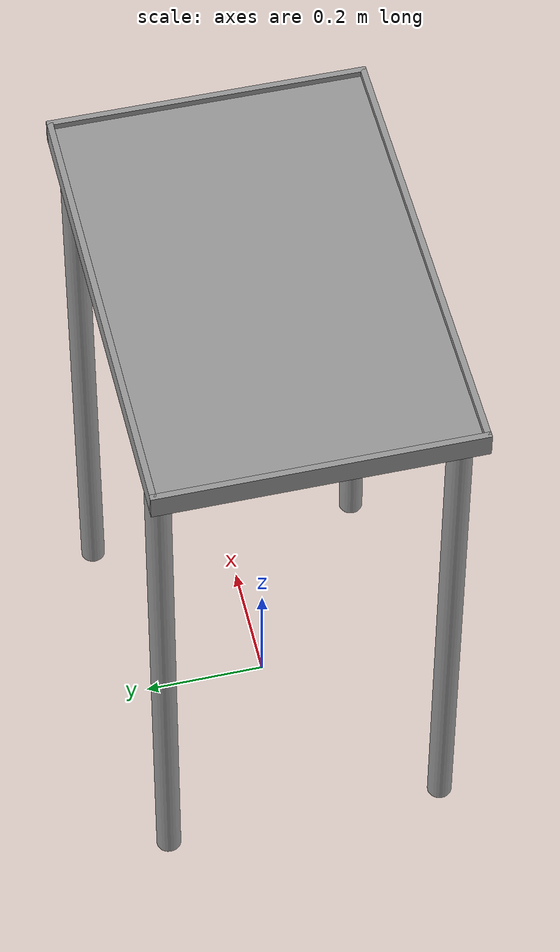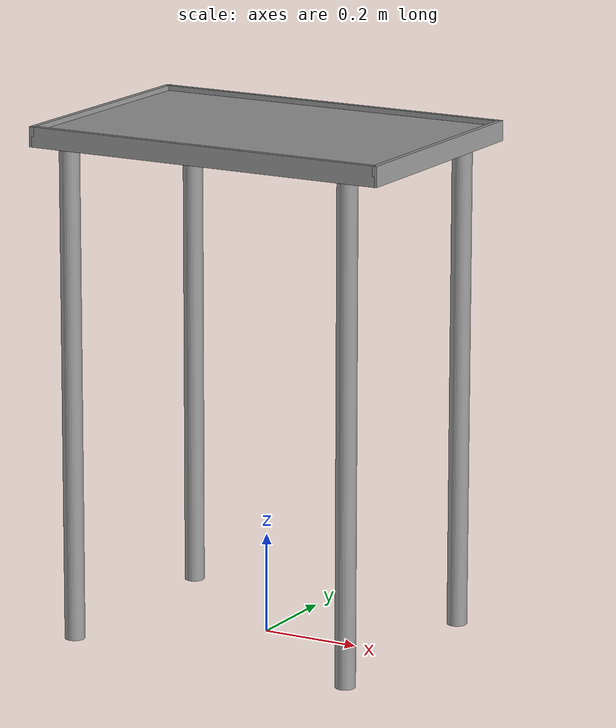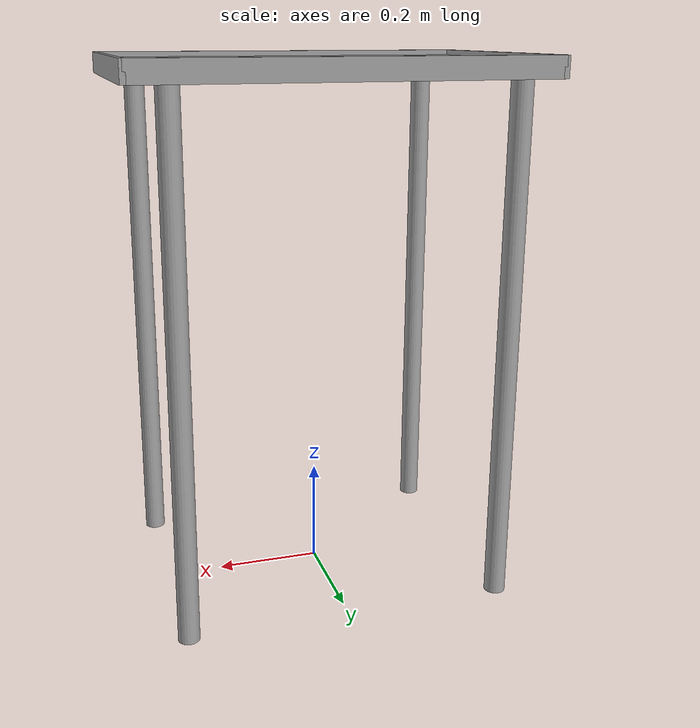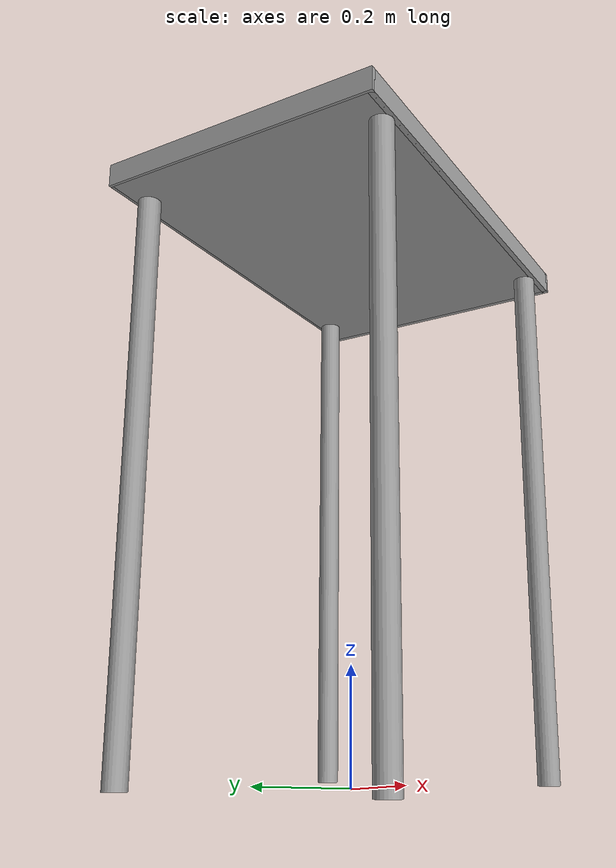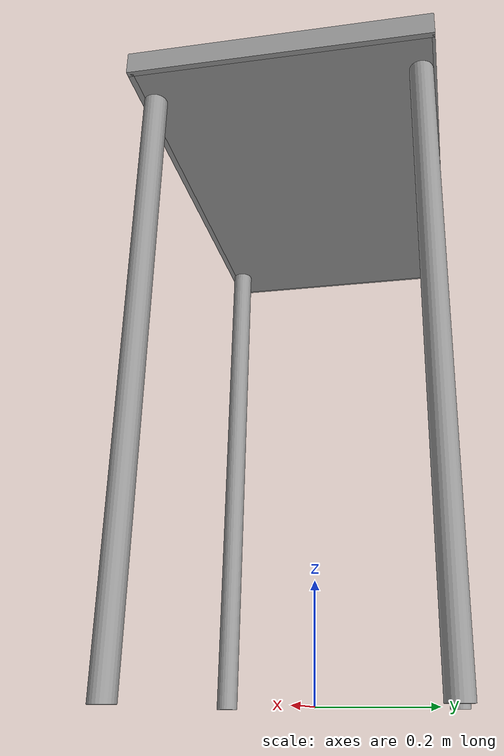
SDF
<?xml version="1.0" ?>
<sdf version="1.5">
  <model name="table">
    <static>true</static>
    <link name="link">
      <collision name="surface">
        <pose>0 0 1.0 0 0 0</pose>
        <geometry>
          <box>
            <size>0.75 0.5 0.03</size>
          </box>
        </geometry>
        <surface>
          <friction>
            <ode>
              <mu>5</mu>
              <mu2>5</mu2>
            </ode>
          </friction>
        </surface>
      </collision>
      <visual name="visual1">
        <pose>0 0 1.0 0 0 0</pose>
        <geometry>
          <box>
            <size>0.75 0.5 0.03</size>
          </box>
        </geometry>
        <material>
          <script>
            <uri>file://media/materials/scripts/gazebo.material</uri>
            <name>Gazebo/Grey</name>
          </script>
        </material>
      </visual>

      <collision name="bort">
        <pose>0 0.250 1.005 1.57 0 0</pose>
        <geometry>
          <box>
            <size>0.75 0.04 0.01</size>
          </box>
        </geometry>
        <surface>
          <friction>
            <ode>
              <mu>0.6</mu>
              <mu2>0.6</mu2>
            </ode>
          </friction>
        </surface>
      </collision>
      <visual name="bortv">
        <pose>0 0.250 1.005 1.57 0 0</pose>
        <geometry>
          <box>
            <size>0.75 0.04 0.01</size>
          </box>
        </geometry>
        <material>
          <script>
            <uri>file://media/materials/scripts/gazebo.material</uri>
            <name>Gazebo/Grey</name>
          </script>
        </material>
      </visual>

<collision name="bort1">
        <pose>0 -0.250 1.005 1.57 0 0</pose>
        <geometry>
          <box>
            <size>0.75 0.04 0.01</size>
          </box>
        </geometry>
        <surface>
          <friction>
            <ode>
              <mu>0.6</mu>
              <mu2>0.6</mu2>
            </ode>
          </friction>
        </surface>
      </collision>
      <visual name="bortv1">
        <pose>0 -0.250 1.005 1.57 0 0</pose>
        <geometry>
          <box>
            <size>0.75 0.04 0.01</size>
          </box>
        </geometry>
        <material>
          <script>
            <uri>file://media/materials/scripts/gazebo.material</uri>
            <name>Gazebo/Grey</name>
          </script>
        </material>
      </visual>

<collision name="bort2">
        <pose>0.375 0 1.005 0 1.57 0</pose>
        <geometry>
          <box>
            <size>0.04 0.51 0.01</size>
          </box>
        </geometry>
        <surface>
          <friction>
            <ode>
              <mu>0.6</mu>
              <mu2>0.6</mu2>
            </ode>
          </friction>
        </surface>
      </collision>
      <visual name="bortv2">
        <pose>0.375 0 1.005 0 1.57 0</pose>
        <geometry>
          <box>
            <size>0.04 0.51 0.01</size>
          </box>
        </geometry>
        <material>
          <script>
            <uri>file://media/materials/scripts/gazebo.material</uri>
            <name>Gazebo/Grey</name>
          </script>
        </material>
      </visual>

<collision name="bort3">
        <pose>-0.375 0 1.005 0 1.57 0</pose>
        <geometry>
          <box>
            <size>0.04 0.51 0.01</size>
          </box>
        </geometry>
        <surface>
          <friction>
            <ode>
              <mu>0.6</mu>
              <mu2>0.6</mu2>
            </ode>
          </friction>
        </surface>
      </collision>
      <visual name="bortv3">
        <pose>-0.375 0 1.005 0 1.57 0</pose>
        <geometry>
          <box>
            <size>0.04 0.51 0.01</size>
          </box>
        </geometry>
        <material>
          <script>
            <uri>file://media/materials/scripts/gazebo.material</uri>
            <name>Gazebo/Grey</name>
          </script>
        </material>
      </visual>

      <collision name="front_left_leg">
        <pose>0.305 0.23 0.5 0 0 0</pose>
        <geometry>
          <cylinder>
            <radius>0.02</radius>
            <length>1.0</length>
          </cylinder>
        </geometry>
      </collision>
      <visual name="front_left_leg">
        <pose>0.305 0.23 0.5 0 0 0</pose>
        <geometry>
          <cylinder>
            <radius>0.02</radius>
            <length>1.0</length>
          </cylinder>
        </geometry>
        <material>
          <script>
            <uri>file://media/materials/scripts/gazebo.material</uri>
            <name>Gazebo/Grey</name>
          </script>
        </material>
      </visual>
      <collision name="front_right_leg">
        <pose>0.305 -0.23 0.5 0 0 0</pose>
        <geometry>
          <cylinder>
            <radius>0.02</radius>
            <length>1.0</length>
          </cylinder>
        </geometry>
      </collision>
      <visual name="front_right_leg">
        <pose>0.305 -0.23 0.5 0 0 0</pose>
        <geometry>
          <cylinder>
            <radius>0.02</radius>
            <length>1.0</length>
          </cylinder>
        </geometry>
        <material>
          <script>
            <uri>file://media/materials/scripts/gazebo.material</uri>
            <name>Gazebo/Grey</name>
          </script>
        </material>
      </visual>
      <collision name="back_right_leg">
        <pose>-0.305 -0.23 0.5 0 0 0</pose>
        <geometry>
          <cylinder>
            <radius>0.02</radius>
            <length>1.0</length>
          </cylinder>
        </geometry>
      </collision>
      <visual name="back_right_leg">
        <pose>-0.305 -0.23 0.5 0 0 0</pose>
        <geometry>
          <cylinder>
            <radius>0.02</radius>
            <length>1.0</length>
          </cylinder>
        </geometry>
        <material>
          <script>
            <uri>file://media/materials/scripts/gazebo.material</uri>
            <name>Gazebo/Grey</name>
          </script>
        </material>
      </visual>
      <collision name="back_left_leg">
        <pose>-0.305 0.23 0.5 0 0 0</pose>
        <geometry>
          <cylinder>
            <radius>0.02</radius>
            <length>1.0</length>
          </cylinder>
        </geometry>
      </collision>
      <visual name="back_left_leg">
        <pose>-0.305 0.23 0.5 0 0 0</pose>
        <geometry>
          <cylinder>
            <radius>0.02</radius>
            <length>1.0</length>
          </cylinder>
        </geometry>
        <material>
          <script>
            <uri>file://media/materials/scripts/gazebo.material</uri>
            <name>Gazebo/Grey</name>
          </script>
        </material>
      </visual>
    </link>
  </model>
</sdf>
